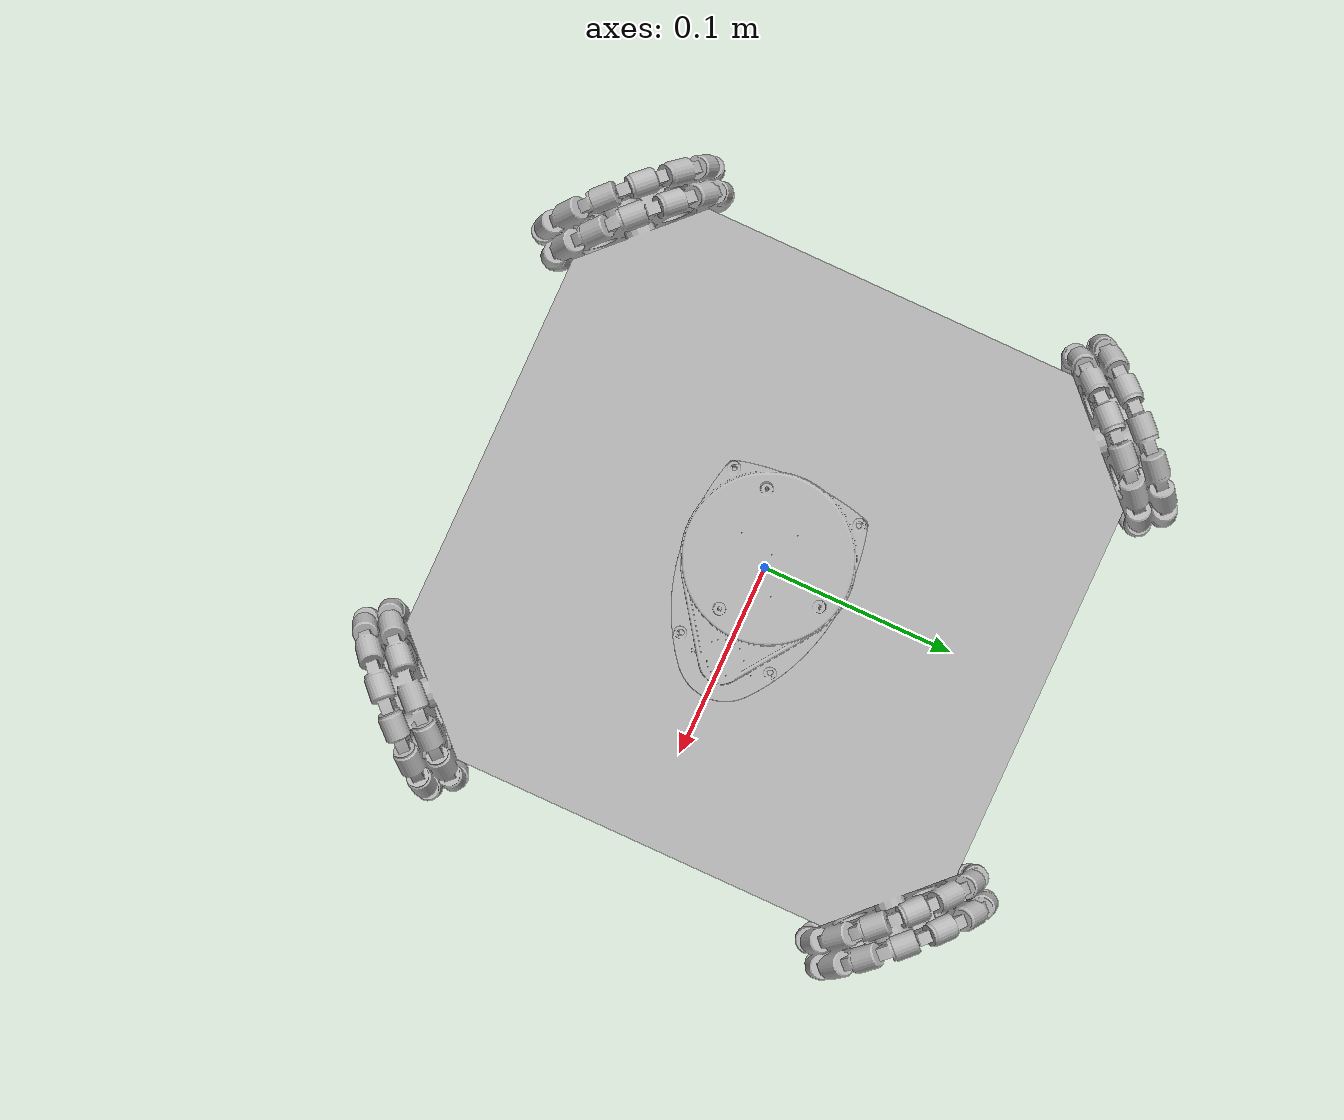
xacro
<?xml version="1.0" ?>
<robot name="rosbot" xmlns:xacro="http://www.ros.org/wiki/xacro">

<xacro:include filename="$(find rosbot_description)/urdf/materials.xacro" />
<xacro:include filename="$(find rosbot_description)/urdf/rosbot.trans" />
<xacro:include filename="$(find rosbot_description)/urdf/rosbot.gazebo" />
<link name="base_link">
  <inertial>
    <origin xyz="-3.749576081263265e-14 -1.474920661336075e-16 0.09200116316942011" rpy="0 0 0"/>
    <mass value="2.3530972702094903"/>
    <inertia ixx="0.027245" iyy="0.027245" izz="0.026163" ixy="0.0" iyz="-0.0" ixz="0.0"/>
  </inertial>
  <visual>
    <origin xyz="0 0 0" rpy="0 0 0"/>
    <geometry>
      <mesh filename="file://$(find rosbot_description)/meshes/base_link.stl" scale="0.001 0.001 0.001"/>
    </geometry>
    <material name="silver"/>
  </visual>
  <collision>
    <origin xyz="0 0 0" rpy="0 0 0"/>
    <geometry>
      <mesh filename="file://$(find rosbot_description)/meshes/base_link.stl" scale="0.001 0.001 0.001"/>
    </geometry>
  </collision>
</link>

<link name="lb_wheel_1">
  <inertial>
    <origin xyz="0.005413780765341936 -0.005382734458352467 -2.551672796897303e-05" rpy="0 0 0"/>
    <mass value="0.0778319216075838"/>
    <inertia ixx="8.3e-05" iyy="8.3e-05" izz="5.7e-05" ixy="-2.5e-05" iyz="0.0" ixz="0.0"/>
  </inertial>
  <visual>
    <origin xyz="0.132071 -0.132071 -0.04845" rpy="0 0 0"/>
    <geometry>
      <mesh filename="file://$(find rosbot_description)/meshes/lb_wheel_1.stl" scale="0.001 0.001 0.001"/>
    </geometry>
    <material name="silver"/>
  </visual>
  <collision>
    <origin xyz="0.132071 -0.132071 -0.04845" rpy="0 0 0"/>
    <geometry>
      <mesh filename="file://$(find rosbot_description)/meshes/lb_wheel_1.stl" scale="0.001 0.001 0.001"/>
    </geometry>
  </collision>
</link>

<link name="lw_wheel_1">
  <inertial>
    <origin xyz="-0.005413780765340992 -0.0053827344583514125 2.5516727968480368e-05" rpy="0 0 0"/>
    <mass value="0.07783192160758527"/>
    <inertia ixx="8.3e-05" iyy="8.3e-05" izz="5.7e-05" ixy="2.5e-05" iyz="-0.0" ixz="0.0"/>
  </inertial>
  <visual>
    <origin xyz="-0.132071 -0.132071 -0.04845" rpy="0 0 0"/>
    <geometry>
      <mesh filename="file://$(find rosbot_description)/meshes/lw_wheel_1.stl" scale="0.001 0.001 0.001"/>
    </geometry>
    <material name="silver"/>
  </visual>
  <collision>
    <origin xyz="-0.132071 -0.132071 -0.04845" rpy="0 0 0"/>
    <geometry>
      <mesh filename="file://$(find rosbot_description)/meshes/lw_wheel_1.stl" scale="0.001 0.001 0.001"/>
    </geometry>
  </collision>
</link>

<link name="rw_wheel_1">
  <inertial>
    <origin xyz="-0.005416332872606844 0.00538019146711749 2.191107892976496e-05" rpy="0 0 0"/>
    <mass value="0.07783193873752603"/>
    <inertia ixx="8.3e-05" iyy="8.3e-05" izz="5.8e-05" ixy="-2.5e-05" iyz="0.0" ixz="0.0"/>
  </inertial>
  <visual>
    <origin xyz="-0.132071 0.132071 -0.04845" rpy="0 0 0"/>
    <geometry>
      <mesh filename="file://$(find rosbot_description)/meshes/rw_wheel_1.stl" scale="0.001 0.001 0.001"/>
    </geometry>
    <material name="silver"/>
  </visual>
  <collision>
    <origin xyz="-0.132071 0.132071 -0.04845" rpy="0 0 0"/>
    <geometry>
      <mesh filename="file://$(find rosbot_description)/meshes/rw_wheel_1.stl" scale="0.001 0.001 0.001"/>
    </geometry>
  </collision>
</link>

<link name="rb_wheel_1">
  <inertial>
    <origin xyz="0.00539067515626529 0.0054217214632542865 2.5516727968813435e-05" rpy="0 0 0"/>
    <mass value="0.07783192160758773"/>
    <inertia ixx="8.3e-05" iyy="8.3e-05" izz="5.7e-05" ixy="2.5e-05" iyz="-0.0" ixz="0.0"/>
  </inertial>
  <visual>
    <origin xyz="0.132071 0.132071 -0.04845" rpy="0 0 0"/>
    <geometry>
      <mesh filename="file://$(find rosbot_description)/meshes/rb_wheel_1.stl" scale="0.001 0.001 0.001"/>
    </geometry>
    <material name="silver"/>
  </visual>
  <collision>
    <origin xyz="0.132071 0.132071 -0.04845" rpy="0 0 0"/>
    <geometry>
      <mesh filename="file://$(find rosbot_description)/meshes/rb_wheel_1.stl" scale="0.001 0.001 0.001"/>
    </geometry>
  </collision>
</link>

<link name="rp_lidar_1">
  <inertial>
    <origin xyz="0.008987901819230128 -0.00054985044767053 0.016419272899719672" rpy="0 0 0"/>
    <mass value="0.07378209902759401"/>
    <inertia ixx="3.1e-05" iyy="6.1e-05" izz="7.2e-05" ixy="-1e-06" iyz="0.0" ixz="6e-06"/>
  </inertial>
  <visual>
    <origin xyz="-0.0 -0.0 -0.23445" rpy="0 0 0"/>
    <geometry>
      <mesh filename="file://$(find rosbot_description)/meshes/rp_lidar_1.stl" scale="0.001 0.001 0.001"/>
    </geometry>
    <material name="silver"/>
  </visual>
  <collision>
    <origin xyz="-0.0 -0.0 -0.23445" rpy="0 0 0"/>
    <geometry>
      <mesh filename="file://$(find rosbot_description)/meshes/rp_lidar_1.stl" scale="0.001 0.001 0.001"/>
    </geometry>
  </collision>
</link>

<joint name="lb_joint" type="continuous">
  <origin xyz="-0.132071 0.132071 0.04845" rpy="0 0 0"/>
  <parent link="base_link"/>
  <child link="lb_wheel_1"/>
  <axis xyz="-0.707107 0.707107 -0.0"/>
</joint>

<joint name="lw_joint" type="continuous">
  <origin xyz="0.132071 0.132071 0.04845" rpy="0 0 0"/>
  <parent link="base_link"/>
  <child link="lw_wheel_1"/>
  <axis xyz="0.707107 0.707107 0.0"/>
</joint>

<joint name="rw_joint" type="continuous">
  <origin xyz="0.132071 -0.132071 0.04845" rpy="0 0 0"/>
  <parent link="base_link"/>
  <child link="rw_wheel_1"/>
  <axis xyz="0.707107 -0.707107 0.0"/>
</joint>

<joint name="rb_joint" type="continuous">
  <origin xyz="-0.132071 -0.132071 0.04845" rpy="0 0 0"/>
  <parent link="base_link"/>
  <child link="rb_wheel_1"/>
  <axis xyz="-0.707107 -0.707107 -0.0"/>
</joint>

<joint name="rp_joint" type="fixed">
  <origin xyz="0.0 0.0 0.23445" rpy="0 0 0"/>
  <parent link="base_link"/>
  <child link="rp_lidar_1"/>
</joint>

</robot>

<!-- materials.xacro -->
<robot name="omniwheel" xmlns:xacro="http://www.ros.org/wiki/xacro" >

<material name="silver">
  <color rgba="0.700 0.700 0.700 1.000"/>
</material>

</robot>

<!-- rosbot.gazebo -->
<robot name="rosbot" xmlns:xacro="http://www.ros.org/wiki/xacro" >

<xacro:property name="body_color" value="Gazebo/Silver" />

<gazebo>
  <plugin name="control" filename="libgazebo_ros_control.so"/>
</gazebo>
<gazebo reference="base_link">
  <material>${body_color}</material>
  <mu1>0.2</mu1>
  <mu2>0.2</mu2>
  <self_collide>true</self_collide>
  <gravity>true</gravity>
</gazebo>

<gazebo reference="lb_wheel_1">
  <material>${body_color}</material>
  <mu1>0.2</mu1>
  <mu2>0.2</mu2>
  <self_collide>true</self_collide>
</gazebo>

<gazebo reference="lw_wheel_1">
  <material>${body_color}</material>
  <mu1>0.2</mu1>
  <mu2>0.2</mu2>
  <self_collide>true</self_collide>
</gazebo>

<gazebo reference="rw_wheel_1">
  <material>${body_color}</material>
  <mu1>0.2</mu1>
  <mu2>0.2</mu2>
  <self_collide>true</self_collide>
</gazebo>

<gazebo reference="rb_wheel_1">
  <material>${body_color}</material>
  <mu1>0.2</mu1>
  <mu2>0.2</mu2>
  <self_collide>true</self_collide>
</gazebo>

<gazebo reference="rp_lidar_1">
  <material>${body_color}</material>
  <mu1>0.2</mu1>
  <mu2>0.2</mu2>
  <self_collide>true</self_collide>
</gazebo>

</robot>
